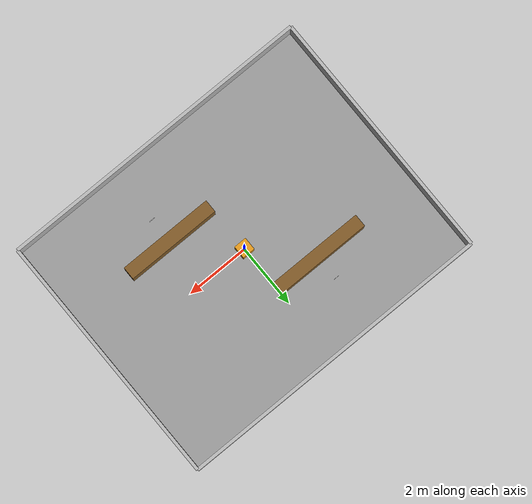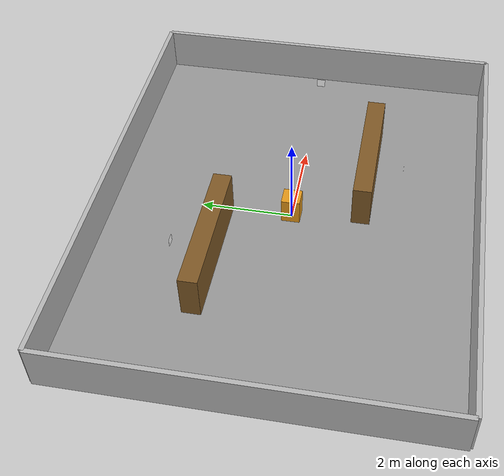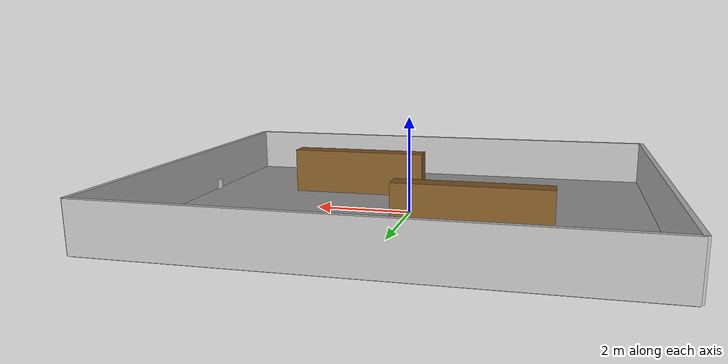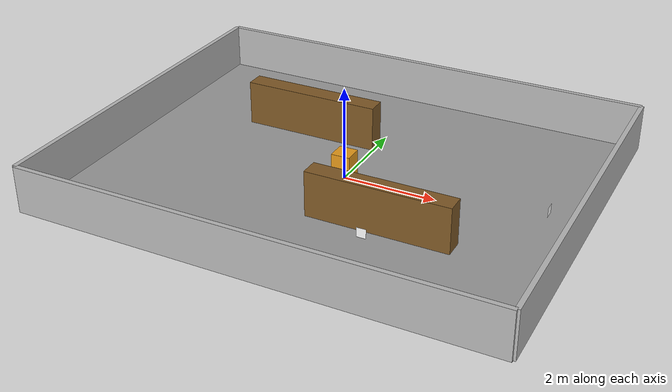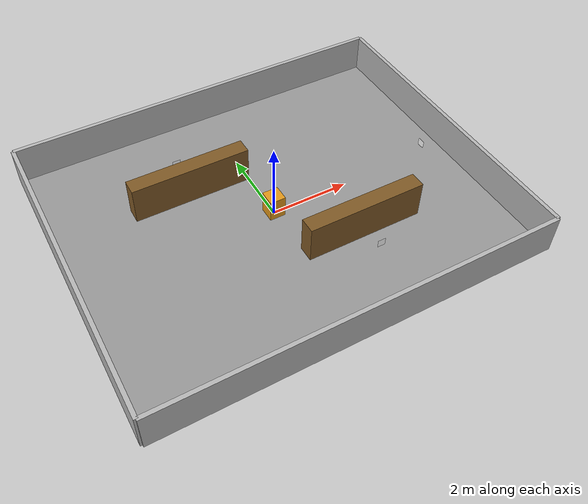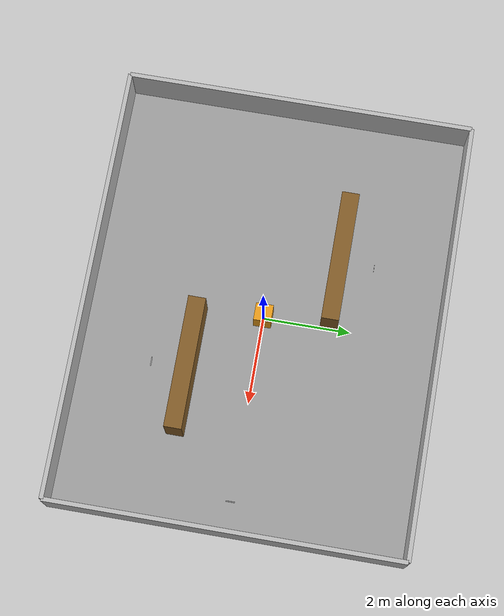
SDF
<?xml version="1.0"?>
<sdf version="1.9">
  <world name="warehouse">
    <physics name="1ms" type="ignored">
      <max_step_size>0.001</max_step_size>
      <real_time_factor>1.0</real_time_factor>
    </physics>
    <plugin filename="gz-sim-physics-system" name="gz::sim::systems::Physics"/>
    <plugin filename="gz-sim-user-commands-system" name="gz::sim::systems::UserCommands"/>
    <plugin filename="gz-sim-scene-broadcaster-system" name="gz::sim::systems::SceneBroadcaster"/>
    <plugin filename="gz-sim-sensors-system" name="gz::sim::systems::Sensors">
      <render_engine>ogre2</render_engine>
    </plugin>
    <plugin filename="gz-sim-contact-system" name="gz::sim::systems::Contact"/>

    <light type="directional" name="sun">
      <cast_shadows>true</cast_shadows>
      <pose>0 0 10 0 0 0</pose>
      <diffuse>0.8 0.8 0.8 1</diffuse>
      <direction>-0.5 0.1 -0.9</direction>
    </light>

    <!-- Floor 10x8m -->
    <model name="floor">
      <static>true</static>
      <link name="floor_link">
        <collision name="collision"><geometry><box><size>10 8 0.05</size></box></geometry></collision>
        <visual name="visual"><geometry><box><size>10 8 0.05</size></box></geometry>
          <material><ambient>0.6 0.6 0.6 1</ambient><diffuse>0.6 0.6 0.6 1</diffuse></material>
        </visual>
      </link>
    </model>

    <!-- Perimeter walls -->
    <model name="wall_north">
      <static>true</static>
      <pose>0 4 0.5 0 0 0</pose>
      <link name="link"><collision name="c"><geometry><box><size>10 0.1 1.0</size></box></geometry></collision>
      <visual name="v"><geometry><box><size>10 0.1 1.0</size></box></geometry></visual></link>
    </model>
    <model name="wall_south">
      <static>true</static>
      <pose>0 -4 0.5 0 0 0</pose>
      <link name="link"><collision name="c"><geometry><box><size>10 0.1 1.0</size></box></geometry></collision>
      <visual name="v"><geometry><box><size>10 0.1 1.0</size></box></geometry></visual></link>
    </model>
    <model name="wall_east">
      <static>true</static>
      <pose>5 0 0.5 0 0 0</pose>
      <link name="link"><collision name="c"><geometry><box><size>0.1 8 1.0</size></box></geometry></collision>
      <visual name="v"><geometry><box><size>0.1 8 1.0</size></box></geometry></visual></link>
    </model>
    <model name="wall_west">
      <static>true</static>
      <pose>-5 0 0.5 0 0 0</pose>
      <link name="link"><collision name="c"><geometry><box><size>0.1 8 1.0</size></box></geometry></collision>
      <visual name="v"><geometry><box><size>0.1 8 1.0</size></box></geometry></visual></link>
    </model>

    <!-- Shelf row 1 (forms Aisle 1) -->
    <model name="shelf_row1">
      <static>true</static>
      <pose>-1.5 1.5 0.5 0 0 0</pose>
      <link name="link">
        <collision name="c"><geometry><box><size>3 0.4 1.0</size></box></geometry></collision>
        <visual name="v"><geometry><box><size>3 0.4 1.0</size></box></geometry>
          <material><ambient>0.5 0.35 0.15 1</ambient><diffuse>0.5 0.35 0.15 1</diffuse></material>
        </visual>
      </link>
    </model>

    <!-- Shelf row 2 (forms Aisle 2) -->
    <model name="shelf_row2">
      <static>true</static>
      <pose>1.5 -1.5 0.5 0 0 0</pose>
      <link name="link">
        <collision name="c"><geometry><box><size>3 0.4 1.0</size></box></geometry></collision>
        <visual name="v"><geometry><box><size>3 0.4 1.0</size></box></geometry>
          <material><ambient>0.5 0.35 0.15 1</ambient><diffuse>0.5 0.35 0.15 1</diffuse></material>
        </visual>
      </link>
    </model>

    <!-- Movable obstacle box (forklift/person stand-in) -->
    <model name="obstacle_box">
      <pose>0 0 0.3 0 0 0</pose>
      <link name="link">
        <inertial><mass>5</mass><inertia><ixx>0.1</ixx><iyy>0.1</iyy><izz>0.1</izz><ixy>0</ixy><ixz>0</ixz><iyz>0</iyz></inertia></inertial>
        <collision name="c"><geometry><box><size>0.4 0.4 0.6</size></box></geometry></collision>
        <visual name="v"><geometry><box><size>0.4 0.4 0.6</size></box></geometry>
          <material><ambient>0.9 0.6 0.1 1</ambient><diffuse>0.9 0.6 0.1 1</diffuse></material>
        </visual>
      </link>
    </model>

    <!-- ArUco marker planes at delivery points -->
    <model name="marker_aisle1">
      <static>true</static>
      <pose>-1.5 2.3 0.4 1.5708 0 0</pose>
      <link name="link">
        <visual name="v"><geometry><plane><size>0.2 0.2</size></plane></geometry>
          <material><ambient>1 1 1 1</ambient><diffuse>1 1 1 1</diffuse></material>
        </visual>
      </link>
    </model>
    <model name="marker_aisle2">
      <static>true</static>
      <pose>1.5 -2.3 0.4 1.5708 0 0</pose>
      <link name="link">
        <visual name="v"><geometry><plane><size>0.2 0.2</size></plane></geometry>
          <material><ambient>1 1 1 1</ambient><diffuse>1 1 1 1</diffuse></material>
        </visual>
      </link>
    </model>
    <model name="marker_dock">
      <static>true</static>
      <pose>4.3 0 0.4 1.5708 0 1.5708</pose>
      <link name="link">
        <visual name="v"><geometry><plane><size>0.2 0.2</size></plane></geometry>
          <material><ambient>1 1 1 1</ambient><diffuse>1 1 1 1</diffuse></material>
        </visual>
      </link>
    </model>

  </world>
</sdf>
